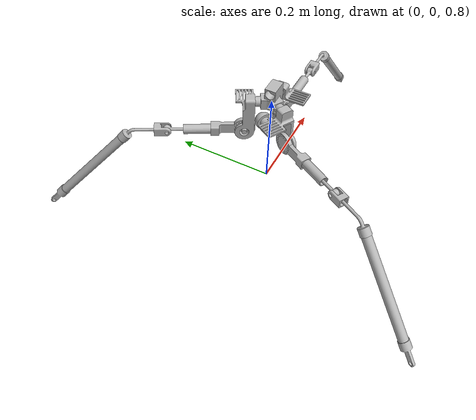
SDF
<sdf version='1.4'>
  <model name='rrbot'>
    <link name='hipJoint'>
      <pose>0 0 1 0 -0 0</pose>
      <inertial>
        <pose>1.6117e-18 -2.14893e-18 0 0 -0 0</pose>
        <mass>0.201812</mass>
        <inertia>
          <ixx>0.666349</ixx>
          <ixy>1.94289e-16</ixy>
          <ixz>7.88861e-31</ixz>
          <iyy>0.870779</iyy>
          <iyz>7.88861e-31</iyz>
          <izz>1.48413</izz>
        </inertia>
      </inertial>
      <collision name='hipJoint_collision'>
        <pose>0 0 0 0 -0 0</pose>
        <geometry>
          <mesh>
            <scale>1 1 1</scale>
            <uri>model://goatLeg/meshes/singleleghipjoint.dae</uri>
          </mesh>
        </geometry>
      </collision>
      <collision name='hipJoint_collision_leg1_motormountingbracket_fixed'>
        <pose>0.04249 0 0 -1.5708 0 0</pose>
        <geometry>
          <mesh>
            <scale>1 1 1</scale>
            <uri>model://goatLeg/meshes/motormountingbracket_fixed.dae</uri>
          </mesh>
        </geometry>
      </collision>
      <collision name='hipJoint_collision_leg1_pipebetweenhipandmotormountingbracket'>
        <pose>0.01176 0 0 0 0 -1.5708</pose>
        <geometry>
          <mesh>
            <scale>1 1 1</scale>
            <uri>model://goatLeg/meshes/pipebetweenhipandmotormountingbracket.dae</uri>
          </mesh>
        </geometry>
      </collision>
      <collision name='hipJoint_collision_leg2_motormountingbracket_fixed'>
        <pose>-0.021245 0.0367974 0 -1.5708 5.55112e-17 2.0944</pose>
        <geometry>
          <mesh>
            <scale>1 1 1</scale>
            <uri>model://goatLeg/meshes/motormountingbracket_fixed.dae</uri>
          </mesh>
        </geometry>
      </collision>
      <collision name='hipJoint_collision_leg2_pipebetweenhipandmotormountingbracket'>
        <pose>-0.00588 0.0101845 0 0 -0 0.523599</pose>
        <geometry>
          <mesh>
            <scale>1 1 1</scale>
            <uri>model://goatLeg/meshes/pipebetweenhipandmotormountingbracket.dae</uri>
          </mesh>
        </geometry>
      </collision>
      <collision name='hipJoint_collision_leg3_motormountingbracket_fixed'>
        <pose>-0.021245 -0.0367974 0 -1.5708 -5.55112e-17 -2.0944</pose>
        <geometry>
          <mesh>
            <scale>1 1 1</scale>
            <uri>model://goatLeg/meshes/motormountingbracket_fixed.dae</uri>
          </mesh>
        </geometry>
      </collision>
      <collision name='hipJoint_collision_leg3_pipebetweenhipandmotormountingbracket'>
        <pose>-0.00588 -0.0101845 0 0 -0 2.61799</pose>
        <geometry>
          <mesh>
            <scale>1 1 1</scale>
            <uri>model://goatLeg/meshes/pipebetweenhipandmotormountingbracket.dae</uri>
          </mesh>
        </geometry>
      </collision>
      <visual name='hipJoint_visual'>
        <pose>0 0 0 0 -0 0</pose>
        <geometry>
          <mesh>
            <scale>1 1 1</scale>
            <uri>model://goatLeg/meshes/singleleghipjoint.dae</uri>
          </mesh>
        </geometry>
      </visual>
      <visual name='hipJoint_visual_leg1_motormountingbracket_fixed'>
        <pose>0.04249 0 0 -1.5708 0 0</pose>
        <geometry>
          <mesh>
            <scale>1 1 1</scale>
            <uri>model://goatLeg/meshes/motormountingbracket_fixed.dae</uri>
          </mesh>
        </geometry>
      </visual>
      <visual name='hipJoint_visual_leg1_pipebetweenhipandmotormountingbracket'>
        <pose>0.01176 0 0 0 0 -1.5708</pose>
        <geometry>
          <mesh>
            <scale>1 1 1</scale>
            <uri>model://goatLeg/meshes/pipebetweenhipandmotormountingbracket.dae</uri>
          </mesh>
        </geometry>
      </visual>
      <visual name='hipJoint_visual_leg2_motormountingbracket_fixed'>
        <pose>-0.021245 0.0367974 0 -1.5708 5.55112e-17 2.0944</pose>
        <geometry>
          <mesh>
            <scale>1 1 1</scale>
            <uri>model://goatLeg/meshes/motormountingbracket_fixed.dae</uri>
          </mesh>
        </geometry>
      </visual>
      <visual name='hipJoint_visual_leg2_pipebetweenhipandmotormountingbracket'>
        <pose>-0.00588 0.0101845 0 0 -0 0.523599</pose>
        <geometry>
          <mesh>
            <scale>1 1 1</scale>
            <uri>model://goatLeg/meshes/pipebetweenhipandmotormountingbracket.dae</uri>
          </mesh>
        </geometry>
      </visual>
      <visual name='hipJoint_visual_leg3_motormountingbracket_fixed'>
        <pose>-0.021245 -0.0367974 0 -1.5708 -5.55112e-17 -2.0944</pose>
        <geometry>
          <mesh>
            <scale>1 1 1</scale>
            <uri>model://goatLeg/meshes/motormountingbracket_fixed.dae</uri>
          </mesh>
        </geometry>
      </visual>
      <visual name='hipJoint_visual_leg3_pipebetweenhipandmotormountingbracket'>
        <pose>-0.00588 -0.0101845 0 0 -0 2.61799</pose>
        <geometry>
          <mesh>
            <scale>1 1 1</scale>
            <uri>model://goatLeg/meshes/pipebetweenhipandmotormountingbracket.dae</uri>
          </mesh>
        </geometry>
      </visual>
      <velocity_decay>
        <linear>0</linear>
        <angular>0</angular>
      </velocity_decay>
    </link>
    <joint name='fixed' type='revolute'>
      <child>hipJoint</child>
      <parent>world</parent>
      <axis>
        <limit>
          <lower>0</lower>
          <upper>0</upper>
        </limit>
        <dynamics>
          <damping>0</damping>
        </dynamics>
        <xyz>0 0 1</xyz>
      </axis>
    </joint>
    <link name='leg1_upper_leg_bracket'>
      <pose>0.05113 0.01267 0.9332 -1.5708 0 0</pose>
      <inertial>
        <pose>0.02583 0 -0.00575 0 -0 0</pose>
        <mass>0.0576607</mass>
        <inertia>
          <ixx>0.0151419</ixx>
          <ixy>0</ixy>
          <ixz>8.56391e-06</ixz>
          <iyy>0.42404</iyy>
          <iyz>0</iyz>
          <izz>0.424018</izz>
        </inertia>
      </inertial>
      <collision name='leg1_upper_leg_bracket_collision'>
        <pose>0 0 0 0 -0 1.5708</pose>
        <geometry>
          <mesh>
            <scale>1 1 1</scale>
            <uri>model://goatLeg/meshes/upper_leg_bracket.dae</uri>
          </mesh>
        </geometry>
      </collision>
      <collision name='leg1_upper_leg_bracket_collision_leg1_upper_leg'>
        <pose>0.05166 0 -0.0115 0 0 -1.5708</pose>
        <geometry>
          <mesh>
            <scale>1 1 1</scale>
            <uri>model://goatLeg/meshes/upper_leg.dae</uri>
          </mesh>
        </geometry>
      </collision>
      <visual name='leg1_upper_leg_bracket_visual'>
        <pose>0 0 0 0 -0 1.5708</pose>
        <geometry>
          <mesh>
            <scale>1 1 1</scale>
            <uri>model://goatLeg/meshes/upper_leg_bracket.dae</uri>
          </mesh>
        </geometry>
      </visual>
      <visual name='leg1_upper_leg_bracket_visual_leg1_upper_leg'>
        <pose>0.05166 0 -0.0115 0 0 -1.5708</pose>
        <geometry>
          <mesh>
            <scale>1 1 1</scale>
            <uri>model://goatLeg/meshes/upper_leg.dae</uri>
          </mesh>
        </geometry>
      </visual>
      <velocity_decay>
        <linear>0</linear>
        <angular>0</angular>
      </velocity_decay>
    </link>
    <joint name='leg1_motorMoutingBracket_to_upperLegBracket' type='revolute'>
      <child>leg1_upper_leg_bracket</child>
      <parent>hipJoint</parent>
      <axis>
        <xyz>0 1 -2.05104e-10</xyz>
        <limit>
          <lower>-1.5708</lower>
          <upper>1.5708</upper>
          <effort>1000</effort>
          <velocity>0</velocity>
        </limit>
        <dynamics/>
      </axis>
    </joint>
    <link name='leg1_eyeJoint'>
      <pose>0.20164 0.00117 0.9332 -1.5708 0 0</pose>
      <inertial>
        <pose>0 0 0 0 -0 0</pose>
        <mass>0.0288303</mass>
        <inertia>
          <ixx>0.00757</ixx>
          <ixy>0</ixy>
          <ixz>0</ixz>
          <iyy>0.212</iyy>
          <iyz>0</iyz>
          <izz>0.21199</izz>
        </inertia>
      </inertial>
      <collision name='leg1_eyeJoint_collision'>
        <pose>0 0 0 0 -0 1.5708</pose>
        <geometry>
          <mesh>
            <scale>1 1 1</scale>
            <uri>model://goatLeg/meshes/eye_joint.dae</uri>
          </mesh>
        </geometry>
      </collision>
      <visual name='leg1_eyeJoint_visual'>
        <pose>0 0 0 0 -0 1.5708</pose>
        <geometry>
          <mesh>
            <scale>1 1 1</scale>
            <uri>model://goatLeg/meshes/eye_joint.dae</uri>
          </mesh>
        </geometry>
      </visual>
      <velocity_decay>
        <linear>0</linear>
        <angular>0</angular>
      </velocity_decay>
    </link>
    <joint name='leg1_upperLeg_to_eyeJoint' type='revolute'>
      <child>leg1_eyeJoint</child>
      <parent>leg1_upper_leg_bracket</parent>
      <axis>
        <xyz>1 0 0</xyz>
        <limit>
          <lower>-3.14159</lower>
          <upper>3.14159</upper>
          <effort>1000</effort>
          <velocity>0</velocity>
        </limit>
        <dynamics/>
      </axis>
    </joint>
    <link name='leg1_sphericalJointMiddleLink'>
      <pose>0.20164 0.00117 0.9332 -1.5708 0 0</pose>
      <inertial>
        <pose>0 0 0 0 -0 0</pose>
        <mass>0.0288303</mass>
        <inertia>
          <ixx>0.00757</ixx>
          <ixy>0</ixy>
          <ixz>0</ixz>
          <iyy>0.212</iyy>
          <iyz>0</iyz>
          <izz>0.21199</izz>
        </inertia>
      </inertial>
      <collision name='leg1_sphericalJointMiddleLink_collision'>
        <pose>0 0 0 0 -0 1.5708</pose>
        <geometry>
          <mesh>
            <scale>1 1 1</scale>
            <uri>model://goatLeg/meshes/spherical_joint_middle_piece.dae</uri>
          </mesh>
        </geometry>
      </collision>
      <visual name='leg1_sphericalJointMiddleLink_visual'>
        <pose>0 0 0 0 -0 1.5708</pose>
        <geometry>
          <mesh>
            <scale>1 1 1</scale>
            <uri>model://goatLeg/meshes/spherical_joint_middle_piece.dae</uri>
          </mesh>
        </geometry>
      </visual>
      <velocity_decay>
        <linear>0</linear>
        <angular>0</angular>
      </velocity_decay>
    </link>
    <joint name='leg1_eyeJoint_to_sphericalJointMiddleLink' type='revolute'>
      <child>leg1_sphericalJointMiddleLink</child>
      <parent>leg1_eyeJoint</parent>
      <axis>
        <xyz>0 1 -2.05104e-10</xyz>
        <limit>
          <lower>-1.5708</lower>
          <upper>1.5708</upper>
          <effort>1000</effort>
          <velocity>0</velocity>
        </limit>
        <dynamics/>
      </axis>
    </joint>
    <link name='leg1_bendElbow'>
      <pose>0.2208 0.00117 0.9332 -1.5708 0 0</pose>
      <inertial>
        <pose>0.100313 0.0714087 0 0 -0 0</pose>
        <mass>0.086491</mass>
        <inertia>
          <ixx>0.242143</ixx>
          <ixy>-0.204729</ixy>
          <ixz>0</ixz>
          <iyy>0.418199</iyy>
          <iyz>0</iyz>
          <izz>0.637603</izz>
        </inertia>
      </inertial>
      <collision name='leg1_bendElbow_collision'>
        <pose>0 0 0 0 -0 0</pose>
        <geometry>
          <mesh>
            <scale>1 1 1</scale>
            <uri>model://goatLeg/meshes/elbow_bend.dae</uri>
          </mesh>
        </geometry>
      </collision>
      <collision name='leg1_bendElbow_collision_leg1_footBracket'>
        <pose>0.239238 0.202306 0 0 -0 0.820305</pose>
        <geometry>
          <mesh>
            <scale>1 1 1</scale>
            <uri>model://goatLeg/meshes/foot_bracket.dae</uri>
          </mesh>
        </geometry>
      </collision>
      <collision name='leg1_bendElbow_collision_leg1_lowerLeg'>
        <pose>0.0617 0.01192 0 0 0 -0.750492</pose>
        <geometry>
          <mesh>
            <scale>1 1 1</scale>
            <uri>model://goatLeg/meshes/lower_leg.dae</uri>
          </mesh>
        </geometry>
      </collision>
      <visual name='leg1_bendElbow_visual'>
        <pose>0 0 0 0 -0 0</pose>
        <geometry>
          <mesh>
            <scale>1 1 1</scale>
            <uri>model://goatLeg/meshes/elbow_bend.dae</uri>
          </mesh>
        </geometry>
      </visual>
      <visual name='leg1_bendElbow_visual_leg1_footBracket'>
        <pose>0.239238 0.202306 0 0 -0 0.820305</pose>
        <geometry>
          <mesh>
            <scale>1 1 1</scale>
            <uri>model://goatLeg/meshes/foot_bracket.dae</uri>
          </mesh>
        </geometry>
      </visual>
      <visual name='leg1_bendElbow_visual_leg1_lowerLeg'>
        <pose>0.0617 0.01192 0 0 0 -0.750492</pose>
        <geometry>
          <mesh>
            <scale>1 1 1</scale>
            <uri>model://goatLeg/meshes/lower_leg.dae</uri>
          </mesh>
        </geometry>
      </visual>
      <velocity_decay>
        <linear>0</linear>
        <angular>0</angular>
      </velocity_decay>
    </link>
    <joint name='leg1_sphericalJointMiddleLink_to_bendElbow' type='revolute'>
      <child>leg1_bendElbow</child>
      <parent>leg1_sphericalJointMiddleLink</parent>
      <axis>
        <xyz>1 0 0</xyz>
        <limit>
          <lower>-3.14159</lower>
          <upper>3.14159</upper>
          <effort>1000</effort>
          <velocity>0</velocity>
        </limit>
        <dynamics/>
      </axis>
    </joint>
    <link name='leg2_upper_leg_bracket'>
      <pose>-0.0365375 0.0379449 0.9332 -1.5708 5.55112e-17 2.0944</pose>
      <inertial>
        <pose>0.02583 0 -0.00575 0 -0 0</pose>
        <mass>0.0576607</mass>
        <inertia>
          <ixx>0.0151419</ixx>
          <ixy>0</ixy>
          <ixz>8.56391e-06</ixz>
          <iyy>0.42404</iyy>
          <iyz>0</iyz>
          <izz>0.424018</izz>
        </inertia>
      </inertial>
      <collision name='leg2_upper_leg_bracket_collision'>
        <pose>0 0 0 0 -0 1.5708</pose>
        <geometry>
          <mesh>
            <scale>1 1 1</scale>
            <uri>model://goatLeg/meshes/upper_leg_bracket.dae</uri>
          </mesh>
        </geometry>
      </collision>
      <collision name='leg2_upper_leg_bracket_collision_leg2_upper_leg'>
        <pose>0.05166 0 -0.0115 0 0 -1.5708</pose>
        <geometry>
          <mesh>
            <scale>1 1 1</scale>
            <uri>model://goatLeg/meshes/upper_leg.dae</uri>
          </mesh>
        </geometry>
      </collision>
      <visual name='leg2_upper_leg_bracket_visual'>
        <pose>0 0 0 0 -0 1.5708</pose>
        <geometry>
          <mesh>
            <scale>1 1 1</scale>
            <uri>model://goatLeg/meshes/upper_leg_bracket.dae</uri>
          </mesh>
        </geometry>
      </visual>
      <visual name='leg2_upper_leg_bracket_visual_leg2_upper_leg'>
        <pose>0.05166 0 -0.0115 0 0 -1.5708</pose>
        <geometry>
          <mesh>
            <scale>1 1 1</scale>
            <uri>model://goatLeg/meshes/upper_leg.dae</uri>
          </mesh>
        </geometry>
      </visual>
      <velocity_decay>
        <linear>0</linear>
        <angular>0</angular>
      </velocity_decay>
    </link>
    <joint name='leg2_motorMoutingBracket_to_upperLegBracket' type='revolute'>
      <child>leg2_upper_leg_bracket</child>
      <parent>hipJoint</parent>
      <axis>
        <xyz>-0.866025 -0.5 -2.05104e-10</xyz>
        <limit>
          <lower>-1.5708</lower>
          <upper>1.5708</upper>
          <effort>1000</effort>
          <velocity>0</velocity>
        </limit>
        <dynamics/>
      </axis>
    </joint>
    <link name='leg2_eyeJoint'>
      <pose>-0.101833 0.17404 0.9332 -1.5708 5.55112e-17 2.0944</pose>
      <inertial>
        <pose>0 0 0 0 -0 0</pose>
        <mass>0.0288303</mass>
        <inertia>
          <ixx>0.00757</ixx>
          <ixy>0</ixy>
          <ixz>0</ixz>
          <iyy>0.212</iyy>
          <iyz>0</iyz>
          <izz>0.21199</izz>
        </inertia>
      </inertial>
      <collision name='leg2_eyeJoint_collision'>
        <pose>0 0 0 0 -0 1.5708</pose>
        <geometry>
          <mesh>
            <scale>1 1 1</scale>
            <uri>model://goatLeg/meshes/eye_joint.dae</uri>
          </mesh>
        </geometry>
      </collision>
      <visual name='leg2_eyeJoint_visual'>
        <pose>0 0 0 0 -0 1.5708</pose>
        <geometry>
          <mesh>
            <scale>1 1 1</scale>
            <uri>model://goatLeg/meshes/eye_joint.dae</uri>
          </mesh>
        </geometry>
      </visual>
      <velocity_decay>
        <linear>0</linear>
        <angular>0</angular>
      </velocity_decay>
    </link>
    <joint name='leg2_upperLeg_to_eyeJoint' type='revolute'>
      <child>leg2_eyeJoint</child>
      <parent>leg2_upper_leg_bracket</parent>
      <axis>
        <xyz>-0.5 0.866025 0</xyz>
        <limit>
          <lower>-3.14159</lower>
          <upper>3.14159</upper>
          <effort>1000</effort>
          <velocity>0</velocity>
        </limit>
        <dynamics/>
      </axis>
    </joint>
    <link name='leg2_sphericalJointMiddleLink'>
      <pose>-0.101833 0.17404 0.9332 -1.5708 5.55112e-17 2.0944</pose>
      <inertial>
        <pose>0 0 0 0 -0 0</pose>
        <mass>0.0288303</mass>
        <inertia>
          <ixx>0.00757</ixx>
          <ixy>0</ixy>
          <ixz>0</ixz>
          <iyy>0.212</iyy>
          <iyz>0</iyz>
          <izz>0.21199</izz>
        </inertia>
      </inertial>
      <collision name='leg2_sphericalJointMiddleLink_collision'>
        <pose>0 0 0 0 -0 1.5708</pose>
        <geometry>
          <mesh>
            <scale>1 1 1</scale>
            <uri>model://goatLeg/meshes/spherical_joint_middle_piece.dae</uri>
          </mesh>
        </geometry>
      </collision>
      <visual name='leg2_sphericalJointMiddleLink_visual'>
        <pose>0 0 0 0 -0 1.5708</pose>
        <geometry>
          <mesh>
            <scale>1 1 1</scale>
            <uri>model://goatLeg/meshes/spherical_joint_middle_piece.dae</uri>
          </mesh>
        </geometry>
      </visual>
      <velocity_decay>
        <linear>0</linear>
        <angular>0</angular>
      </velocity_decay>
    </link>
    <joint name='leg2_eyeJoint_to_sphericalJointMiddleLink' type='revolute'>
      <child>leg2_sphericalJointMiddleLink</child>
      <parent>leg2_eyeJoint</parent>
      <axis>
        <xyz>-0.866025 -0.5 -2.05104e-10</xyz>
        <limit>
          <lower>-1.5708</lower>
          <upper>1.5708</upper>
          <effort>1000</effort>
          <velocity>0</velocity>
        </limit>
        <dynamics/>
      </axis>
    </joint>
    <link name='leg2_bendElbow'>
      <pose>-0.111413 0.190633 0.9332 -1.5708 5.55112e-17 2.0944</pose>
      <inertial>
        <pose>0.100313 0.0714087 0 0 -0 0</pose>
        <mass>0.086491</mass>
        <inertia>
          <ixx>0.242143</ixx>
          <ixy>-0.204729</ixy>
          <ixz>0</ixz>
          <iyy>0.418199</iyy>
          <iyz>0</iyz>
          <izz>0.637603</izz>
        </inertia>
      </inertial>
      <collision name='leg2_bendElbow_collision'>
        <pose>0 0 0 0 -0 0</pose>
        <geometry>
          <mesh>
            <scale>1 1 1</scale>
            <uri>model://goatLeg/meshes/elbow_bend.dae</uri>
          </mesh>
        </geometry>
      </collision>
      <collision name='leg2_bendElbow_collision_leg2_footBracket'>
        <pose>0.239238 0.202306 0 0 -0 0.820305</pose>
        <geometry>
          <mesh>
            <scale>1 1 1</scale>
            <uri>model://goatLeg/meshes/foot_bracket.dae</uri>
          </mesh>
        </geometry>
      </collision>
      <collision name='leg2_bendElbow_collision_leg2_lowerLeg'>
        <pose>0.0617 0.01192 0 0 0 -0.750492</pose>
        <geometry>
          <mesh>
            <scale>1 1 1</scale>
            <uri>model://goatLeg/meshes/lower_leg.dae</uri>
          </mesh>
        </geometry>
      </collision>
      <visual name='leg2_bendElbow_visual'>
        <pose>0 0 0 0 -0 0</pose>
        <geometry>
          <mesh>
            <scale>1 1 1</scale>
            <uri>model://goatLeg/meshes/elbow_bend.dae</uri>
          </mesh>
        </geometry>
      </visual>
      <visual name='leg2_bendElbow_visual_leg2_footBracket'>
        <pose>0.239238 0.202306 0 0 -0 0.820305</pose>
        <geometry>
          <mesh>
            <scale>1 1 1</scale>
            <uri>model://goatLeg/meshes/foot_bracket.dae</uri>
          </mesh>
        </geometry>
      </visual>
      <visual name='leg2_bendElbow_visual_leg2_lowerLeg'>
        <pose>0.0617 0.01192 0 0 0 -0.750492</pose>
        <geometry>
          <mesh>
            <scale>1 1 1</scale>
            <uri>model://goatLeg/meshes/lower_leg.dae</uri>
          </mesh>
        </geometry>
      </visual>
      <velocity_decay>
        <linear>0</linear>
        <angular>0</angular>
      </velocity_decay>
    </link>
    <joint name='leg2_sphericalJointMiddleLink_to_bendElbow' type='revolute'>
      <child>leg2_bendElbow</child>
      <parent>leg2_sphericalJointMiddleLink</parent>
      <axis>
        <xyz>-0.5 0.866025 0</xyz>
        <limit>
          <lower>-3.14159</lower>
          <upper>3.14159</upper>
          <effort>1000</effort>
          <velocity>0</velocity>
        </limit>
        <dynamics/>
      </axis>
    </joint>
    <link name='leg3_upper_leg_bracket'>
      <pose>-0.0145925 -0.0506149 0.9332 -1.5708 -5.55112e-17 -2.0944</pose>
      <inertial>
        <pose>0.02583 0 -0.00575 0 -0 0</pose>
        <mass>0.0576607</mass>
        <inertia>
          <ixx>0.0151419</ixx>
          <ixy>0</ixy>
          <ixz>8.56391e-06</ixz>
          <iyy>0.42404</iyy>
          <iyz>0</iyz>
          <izz>0.424018</izz>
        </inertia>
      </inertial>
      <collision name='leg3_upper_leg_bracket_collision'>
        <pose>0 0 0 0 -0 1.5708</pose>
        <geometry>
          <mesh>
            <scale>1 1 1</scale>
            <uri>model://goatLeg/meshes/upper_leg_bracket.dae</uri>
          </mesh>
        </geometry>
      </collision>
      <collision name='leg3_upper_leg_bracket_collision_leg3_upper_leg'>
        <pose>0.05166 0 -0.0115 0 0 -1.5708</pose>
        <geometry>
          <mesh>
            <scale>1 1 1</scale>
            <uri>model://goatLeg/meshes/upper_leg.dae</uri>
          </mesh>
        </geometry>
      </collision>
      <visual name='leg3_upper_leg_bracket_visual'>
        <pose>0 0 0 0 -0 1.5708</pose>
        <geometry>
          <mesh>
            <scale>1 1 1</scale>
            <uri>model://goatLeg/meshes/upper_leg_bracket.dae</uri>
          </mesh>
        </geometry>
      </visual>
      <visual name='leg3_upper_leg_bracket_visual_leg3_upper_leg'>
        <pose>0.05166 0 -0.0115 0 0 -1.5708</pose>
        <geometry>
          <mesh>
            <scale>1 1 1</scale>
            <uri>model://goatLeg/meshes/upper_leg.dae</uri>
          </mesh>
        </geometry>
      </visual>
      <velocity_decay>
        <linear>0</linear>
        <angular>0</angular>
      </velocity_decay>
    </link>
    <joint name='leg3_motorMoutingBracket_to_upperLegBracket' type='revolute'>
      <child>leg3_upper_leg_bracket</child>
      <parent>hipJoint</parent>
      <axis>
        <xyz>0.866025 -0.5 -2.05104e-10</xyz>
        <limit>
          <lower>-1.5708</lower>
          <upper>1.5708</upper>
          <effort>1000</effort>
          <velocity>0</velocity>
        </limit>
        <dynamics/>
      </axis>
    </joint>
    <link name='leg3_eyeJoint'>
      <pose>-0.0998068 -0.17521 0.9332 -1.5708 -5.55112e-17 -2.0944</pose>
      <inertial>
        <pose>0 0 0 0 -0 0</pose>
        <mass>0.0288303</mass>
        <inertia>
          <ixx>0.00757</ixx>
          <ixy>0</ixy>
          <ixz>0</ixz>
          <iyy>0.212</iyy>
          <iyz>0</iyz>
          <izz>0.21199</izz>
        </inertia>
      </inertial>
      <collision name='leg3_eyeJoint_collision'>
        <pose>0 0 0 0 -0 1.5708</pose>
        <geometry>
          <mesh>
            <scale>1 1 1</scale>
            <uri>model://goatLeg/meshes/eye_joint.dae</uri>
          </mesh>
        </geometry>
      </collision>
      <visual name='leg3_eyeJoint_visual'>
        <pose>0 0 0 0 -0 1.5708</pose>
        <geometry>
          <mesh>
            <scale>1 1 1</scale>
            <uri>model://goatLeg/meshes/eye_joint.dae</uri>
          </mesh>
        </geometry>
      </visual>
      <velocity_decay>
        <linear>0</linear>
        <angular>0</angular>
      </velocity_decay>
    </link>
    <joint name='leg3_upperLeg_to_eyeJoint' type='revolute'>
      <child>leg3_eyeJoint</child>
      <parent>leg3_upper_leg_bracket</parent>
      <axis>
        <xyz>-0.5 -0.866025 0</xyz>
        <limit>
          <lower>-3.14159</lower>
          <upper>3.14159</upper>
          <effort>1000</effort>
          <velocity>0</velocity>
        </limit>
        <dynamics/>
      </axis>
    </joint>
    <link name='leg3_sphericalJointMiddleLink'>
      <pose>-0.0998068 -0.17521 0.9332 -1.5708 -5.55112e-17 -2.0944</pose>
      <inertial>
        <pose>0 0 0 0 -0 0</pose>
        <mass>0.0288303</mass>
        <inertia>
          <ixx>0.00757</ixx>
          <ixy>0</ixy>
          <ixz>0</ixz>
          <iyy>0.212</iyy>
          <iyz>0</iyz>
          <izz>0.21199</izz>
        </inertia>
      </inertial>
      <collision name='leg3_sphericalJointMiddleLink_collision'>
        <pose>0 0 0 0 -0 1.5708</pose>
        <geometry>
          <mesh>
            <scale>1 1 1</scale>
            <uri>model://goatLeg/meshes/spherical_joint_middle_piece.dae</uri>
          </mesh>
        </geometry>
      </collision>
      <visual name='leg3_sphericalJointMiddleLink_visual'>
        <pose>0 0 0 0 -0 1.5708</pose>
        <geometry>
          <mesh>
            <scale>1 1 1</scale>
            <uri>model://goatLeg/meshes/spherical_joint_middle_piece.dae</uri>
          </mesh>
        </geometry>
      </visual>
      <velocity_decay>
        <linear>0</linear>
        <angular>0</angular>
      </velocity_decay>
    </link>
    <joint name='leg3_eyeJoint_to_sphericalJointMiddleLink' type='revolute'>
      <child>leg3_sphericalJointMiddleLink</child>
      <parent>leg3_eyeJoint</parent>
      <axis>
        <xyz>0.866025 -0.5 -2.05104e-10</xyz>
        <limit>
          <lower>-1.5708</lower>
          <upper>1.5708</upper>
          <effort>1000</effort>
          <velocity>0</velocity>
        </limit>
        <dynamics/>
      </axis>
    </joint>
    <link name='leg3_bendElbow'>
      <pose>-0.109387 -0.191803 0.9332 -1.5708 -5.55112e-17 -2.0944</pose>
      <inertial>
        <pose>0.100313 0.0714087 0 0 -0 0</pose>
        <mass>0.086491</mass>
        <inertia>
          <ixx>0.242143</ixx>
          <ixy>-0.204729</ixy>
          <ixz>0</ixz>
          <iyy>0.418199</iyy>
          <iyz>0</iyz>
          <izz>0.637603</izz>
        </inertia>
      </inertial>
      <collision name='leg3_bendElbow_collision'>
        <pose>0 0 0 0 -0 0</pose>
        <geometry>
          <mesh>
            <scale>1 1 1</scale>
            <uri>model://goatLeg/meshes/elbow_bend.dae</uri>
          </mesh>
        </geometry>
      </collision>
      <collision name='leg3_bendElbow_collision_leg3_footBracket'>
        <pose>0.239238 0.202306 0 0 -0 0.820305</pose>
        <geometry>
          <mesh>
            <scale>1 1 1</scale>
            <uri>model://goatLeg/meshes/foot_bracket.dae</uri>
          </mesh>
        </geometry>
      </collision>
      <collision name='leg3_bendElbow_collision_leg3_lowerLeg'>
        <pose>0.0617 0.01192 0 0 0 -0.750492</pose>
        <geometry>
          <mesh>
            <scale>1 1 1</scale>
            <uri>model://goatLeg/meshes/lower_leg.dae</uri>
          </mesh>
        </geometry>
      </collision>
      <visual name='leg3_bendElbow_visual'>
        <pose>0 0 0 0 -0 0</pose>
        <geometry>
          <mesh>
            <scale>1 1 1</scale>
            <uri>model://goatLeg/meshes/elbow_bend.dae</uri>
          </mesh>
        </geometry>
      </visual>
      <visual name='leg3_bendElbow_visual_leg3_footBracket'>
        <pose>0.239238 0.202306 0 0 -0 0.820305</pose>
        <geometry>
          <mesh>
            <scale>1 1 1</scale>
            <uri>model://goatLeg/meshes/foot_bracket.dae</uri>
          </mesh>
        </geometry>
      </visual>
      <visual name='leg3_bendElbow_visual_leg3_lowerLeg'>
        <pose>0.0617 0.01192 0 0 0 -0.750492</pose>
        <geometry>
          <mesh>
            <scale>1 1 1</scale>
            <uri>model://goatLeg/meshes/lower_leg.dae</uri>
          </mesh>
        </geometry>
      </visual>
      <velocity_decay>
        <linear>0</linear>
        <angular>0</angular>
      </velocity_decay>
    </link>
    <joint name='leg3_sphericalJointMiddleLink_to_bendElbow' type='revolute'>
      <child>leg3_bendElbow</child>
      <parent>leg3_sphericalJointMiddleLink</parent>
      <axis>
        <xyz>-0.5 -0.866025 0</xyz>
        <limit>
          <lower>-3.14159</lower>
          <upper>3.14159</upper>
          <effort>1000</effort>
          <velocity>0</velocity>
        </limit>
        <dynamics/>
      </axis>
    </joint>

    <link name='footAssembly'>
      <pose>0 0 0.9332 -1.5708 -5.55112e-17 -2.0944</pose>
      <inertial>
        <pose>0.100313 0.0714087 0 0 -0 0</pose>
        <mass>0.086491</mass>
        <inertia>
          <ixx>0.242143</ixx>
          <ixy>-0.204729</ixy>
          <ixz>0</ixz>
          <iyy>0.418199</iyy>
          <iyz>0</iyz>
          <izz>0.637603</izz>
        </inertia>
      </inertial>
      <collision name='footAssembly_collision'>
        <pose>0 0 0 0 -0 0</pose>
        <geometry>
          <mesh>
            <scale>1 1 1</scale>
            <uri>model://goatLeg/meshes/footassembly.dae</uri>
          </mesh>
        </geometry>
      </collision>
      <visual name='footAssembly_visual'>
        <pose>0 0 0 0 -0 0</pose>
        <geometry>
          <mesh>
            <scale>1 1 1</scale>
            <uri>model://goatLeg/meshes/footassembly.dae</uri>
          </mesh>
        </geometry>
      </visual>
      <velocity_decay>
        <linear>0</linear>
        <angular>0</angular>
      </velocity_decay>
    </link>
    <joint name='footAssembly_to_leg3_footBracket' type='revolute'>
      <child>leg3_footBracket</child>
      <parent>footAssembly</parent>
      <axis>
        <xyz>-0.5 -0.866025 0</xyz>
        <limit>
          <lower>-3.14159</lower>
          <upper>3.14159</upper>
          <effort>1000</effort>
          <velocity>0</velocity>
        </limit>
        <dynamics/>
      </axis>
    </joint>
  </model>
</sdf>
